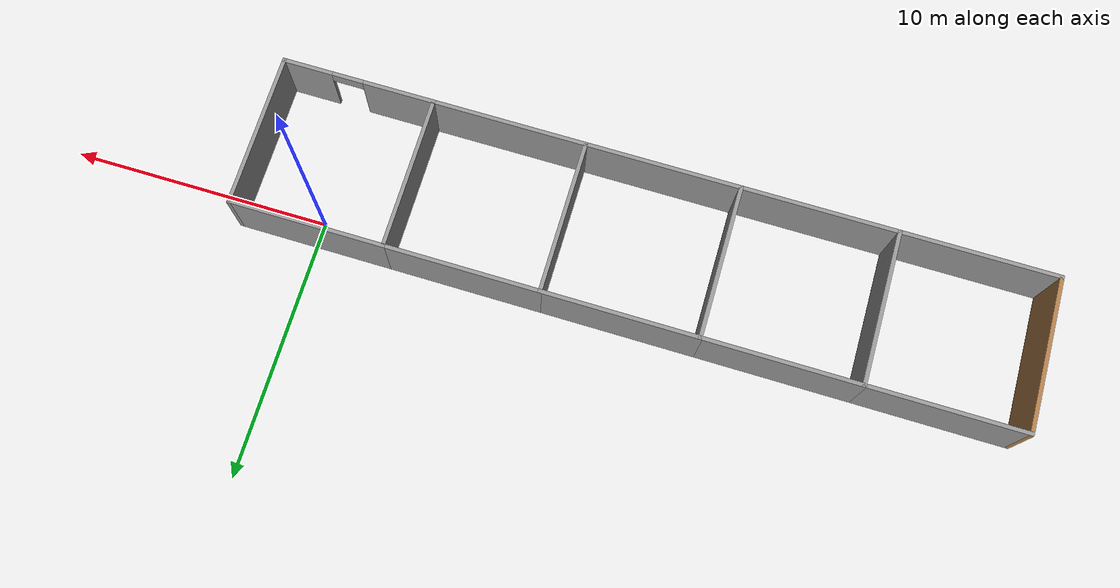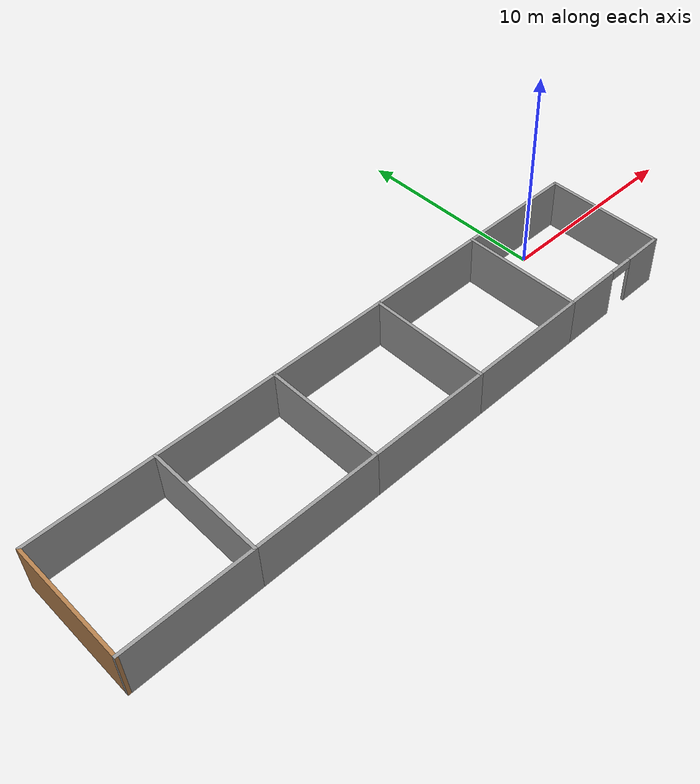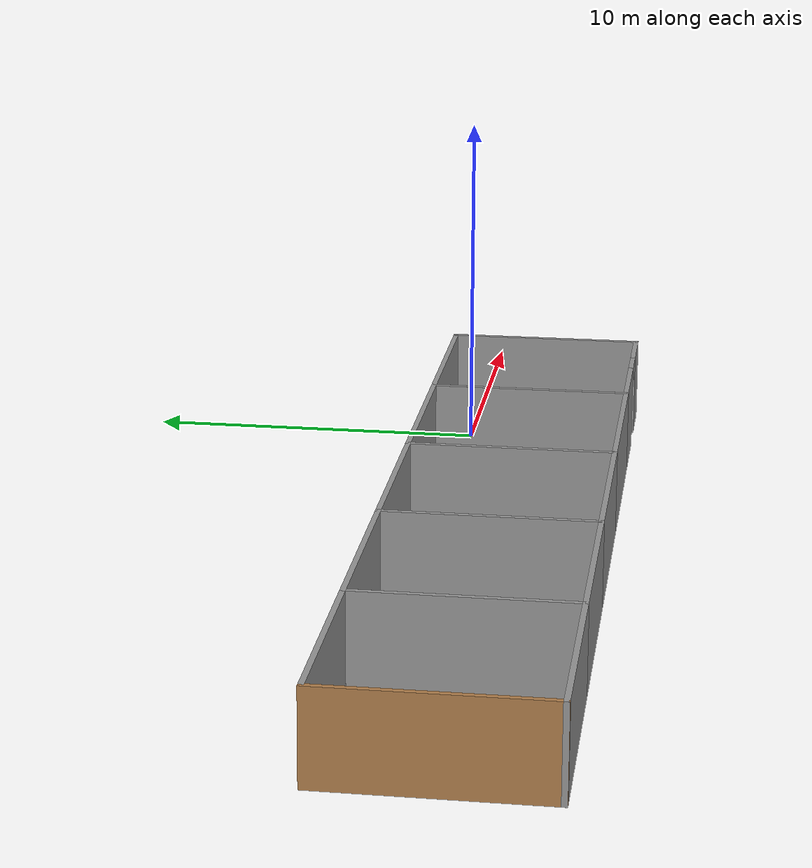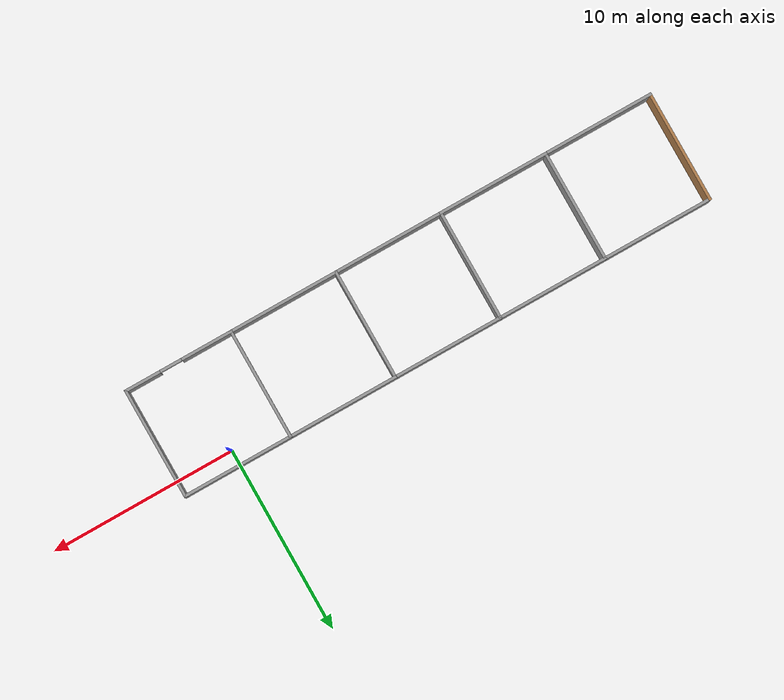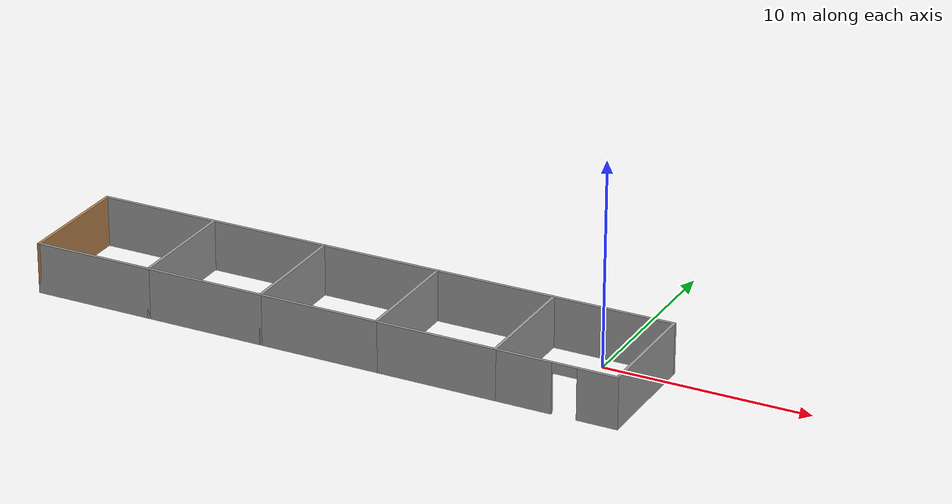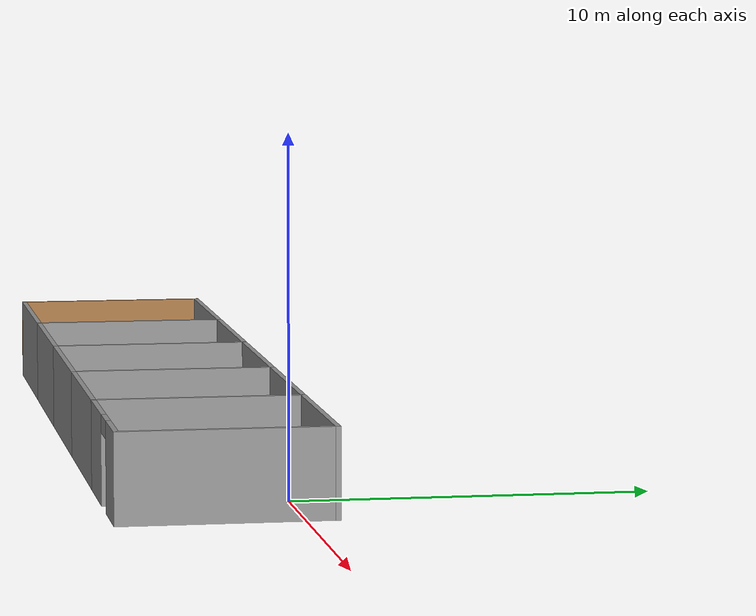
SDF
<?xml version='1.0'?>
<sdf version='1.6'>
  <model name='Layout_v_0_1'>
    <pose frame=''>-11.625 -2.075 0 0 -0 0</pose>
    <link name='Wall_0'>
      <pose frame=''>11.7 -2.925 0 0 -0 3.14159</pose>
      <visual name='Wall_0_Visual_0'>
        <pose frame=''>-2.0125 0 1.25 0 -0 0</pose>
        <geometry>
          <box>
            <size>1.975 0.15 2.5</size>
          </box>
        </geometry>
        <material>
          <script>
            <uri>file://media/materials/scripts/gazebo.material</uri>
            <name>Gazebo/Grey</name>
          </script>
          <ambient>1 1 1 1</ambient>
        </material>
        <meta>
          <layer>0</layer>
        </meta>
      </visual>
      <collision name='Wall_0_Collision_0'>
        <geometry>
          <box>
            <size>1.975 0.15 2.5</size>
          </box>
        </geometry>
        <pose frame=''>-2.0125 0 1.25 0 -0 0</pose>
      </collision>
      <visual name='Wall_0_Visual_1'>
        <pose frame=''>1.5875 0 1.25 0 -0 0</pose>
        <geometry>
          <box>
            <size>2.825 0.15 2.5</size>
          </box>
        </geometry>
        <material>
          <script>
            <uri>file://media/materials/scripts/gazebo.material</uri>
            <name>Gazebo/Grey</name>
          </script>
          <ambient>1 1 1 1</ambient>
        </material>
        <meta>
          <layer>0</layer>
        </meta>
      </visual>
      <collision name='Wall_0_Collision_1'>
        <geometry>
          <box>
            <size>2.825 0.15 2.5</size>
          </box>
        </geometry>
        <pose frame=''>1.5875 0 1.25 0 -0 0</pose>
      </collision>
      <visual name='Wall_0_Visual_2'>
        <pose frame=''>-0.425 0 2.25 0 -0 0</pose>
        <geometry>
          <box>
            <size>1.2 0.15 0.5</size>
          </box>
        </geometry>
        <material>
          <script>
            <uri>file://media/materials/scripts/gazebo.material</uri>
            <name>Gazebo/Grey</name>
          </script>
          <ambient>1 1 1 1</ambient>
        </material>
        <meta>
          <layer>0</layer>
        </meta>
      </visual>
      <collision name='Wall_0_Collision_2'>
        <geometry>
          <box>
            <size>1.2 0.15 0.5</size>
          </box>
        </geometry>
        <pose frame=''>-0.425 0 2.25 0 -0 0</pose>
      </collision>
    </link>
    <link name='Wall_10'>
      <collision name='Wall_10_Collision'>
        <geometry>
          <box>
            <size>6 0.15 2.5</size>
          </box>
        </geometry>
        <pose frame=''>0 0 1.25 0 -0 0</pose>
      </collision>
      <visual name='Wall_10_Visual'>
        <pose frame=''>0 0 1.25 0 -0 0</pose>
        <geometry>
          <box>
            <size>6 0.15 2.5</size>
          </box>
        </geometry>
        <material>
          <script>
            <uri>file://media/materials/scripts/gazebo.material</uri>
            <name>Gazebo/Grey</name>
          </script>
          <ambient>1 1 1 1</ambient>
        </material>
        <meta>
          <layer>0</layer>
        </meta>
      </visual>
      <pose frame=''>5.85 2.925 0 0 -0 0</pose>
    </link>
    <link name='Wall_12'>
      <collision name='Wall_12_Collision'>
        <geometry>
          <box>
            <size>6 0.15 2.5</size>
          </box>
        </geometry>
        <pose frame=''>0 0 1.25 0 -0 0</pose>
      </collision>
      <visual name='Wall_12_Visual'>
        <pose frame=''>0 0 1.25 0 -0 0</pose>
        <geometry>
          <box>
            <size>6 0.15 2.5</size>
          </box>
        </geometry>
        <material>
          <script>
            <uri>file://media/materials/scripts/gazebo.material</uri>
            <name>Gazebo/Grey</name>
          </script>
          <ambient>1 1 1 1</ambient>
        </material>
        <meta>
          <layer>0</layer>
        </meta>
      </visual>
      <pose frame=''>0 -2.925 0 0 -0 3.14159</pose>
    </link>
    <link name='Wall_13'>
      <collision name='Wall_13_Collision'>
        <geometry>
          <box>
            <size>6 0.15 2.5</size>
          </box>
        </geometry>
        <pose frame=''>0 0 1.25 0 -0 0</pose>
      </collision>
      <visual name='Wall_13_Visual'>
        <pose frame=''>0 0 1.25 0 -0 0</pose>
        <geometry>
          <box>
            <size>6 0.15 2.5</size>
          </box>
        </geometry>
        <material>
          <script>
            <uri>file://media/materials/scripts/gazebo.material</uri>
            <name>Gazebo/Grey</name>
          </script>
          <ambient>1 1 1 1</ambient>
        </material>
        <meta>
          <layer>0</layer>
        </meta>
      </visual>
      <pose frame=''>-2.925 0 0 0 -0 1.5708</pose>
    </link>
    <link name='Wall_14'>
      <collision name='Wall_14_Collision'>
        <geometry>
          <box>
            <size>6 0.15 2.5</size>
          </box>
        </geometry>
        <pose frame=''>0 0 1.25 0 -0 0</pose>
      </collision>
      <visual name='Wall_14_Visual'>
        <pose frame=''>0 0 1.25 0 -0 0</pose>
        <geometry>
          <box>
            <size>6 0.15 2.5</size>
          </box>
        </geometry>
        <material>
          <script>
            <uri>file://media/materials/scripts/gazebo.material</uri>
            <name>Gazebo/Grey</name>
          </script>
          <ambient>1 1 1 1</ambient>
        </material>
        <meta>
          <layer>0</layer>
        </meta>
      </visual>
      <pose frame=''>-5.85 2.925 0 0 -0 3.14159</pose>
    </link>
    <link name='Wall_15'>
      <collision name='Wall_15_Collision'>
        <geometry>
          <box>
            <size>6 0.15 2.5</size>
          </box>
        </geometry>
        <pose frame=''>0 0 1.25 0 -0 0</pose>
      </collision>
      <visual name='Wall_15_Visual'>
        <pose frame=''>0 0 1.25 0 -0 0</pose>
        <geometry>
          <box>
            <size>6 0.15 2.5</size>
          </box>
        </geometry>
        <material>
          <script>
            <uri>file://media/materials/scripts/gazebo.material</uri>
            <name>Gazebo/Grey</name>
          </script>
          <ambient>1 1 1 1</ambient>
        </material>
        <meta>
          <layer>0</layer>
        </meta>
      </visual>
      <pose frame=''>-8.775 0 0 0 -0 -1.5708</pose>
    </link>
    <link name='Wall_16'>
      <collision name='Wall_16_Collision'>
        <geometry>
          <box>
            <size>6 0.15 2.5</size>
          </box>
        </geometry>
        <pose frame=''>0 0 1.25 0 -0 0</pose>
      </collision>
      <visual name='Wall_16_Visual'>
        <pose frame=''>0 0 1.25 0 -0 0</pose>
        <geometry>
          <box>
            <size>6 0.15 2.5</size>
          </box>
        </geometry>
        <material>
          <script>
            <uri>file://media/materials/scripts/gazebo.material</uri>
            <name>Gazebo/Grey</name>
          </script>
          <ambient>1 1 1 1</ambient>
        </material>
        <meta>
          <layer>0</layer>
        </meta>
      </visual>
      <pose frame=''>-11.7 -2.925 0 0 -0 3.14159</pose>
    </link>
    <link name='Wall_17'>
      <collision name='Wall_17_Collision'>
        <geometry>
          <box>
            <size>6 0.15 2.5</size>
          </box>
        </geometry>
        <pose frame=''>0 0 1.25 0 -0 0</pose>
      </collision>
      <visual name='Wall_17_Visual'>
        <pose frame=''>0 0 1.25 0 -0 0</pose>
        <geometry>
          <box>
            <size>6 0.15 2.5</size>
          </box>
        </geometry>
        <material>
          <script>
            <uri>file://media/materials/scripts/gazebo.material</uri>
            <name>Gazebo/Wood</name>
          </script>
          <ambient>1 1 1 1</ambient>
        </material>
        <meta>
          <layer>0</layer>
        </meta>
      </visual>
      <pose frame=''>-14.625 0 0 0 -0 1.5708</pose>
    </link>
    <link name='Wall_18'>
      <collision name='Wall_18_Collision'>
        <geometry>
          <box>
            <size>6 0.15 2.5</size>
          </box>
        </geometry>
        <pose frame=''>0 0 1.25 0 -0 0</pose>
      </collision>
      <visual name='Wall_18_Visual'>
        <pose frame=''>0 0 1.25 0 -0 0</pose>
        <geometry>
          <box>
            <size>6 0.15 2.5</size>
          </box>
        </geometry>
        <material>
          <script>
            <uri>file://media/materials/scripts/gazebo.material</uri>
            <name>Gazebo/Grey</name>
          </script>
          <ambient>1 1 1 1</ambient>
        </material>
        <meta>
          <layer>0</layer>
        </meta>
      </visual>
      <pose frame=''>-11.7 2.925 0 0 -0 0</pose>
    </link>
    <link name='Wall_20'>
      <collision name='Wall_20_Collision'>
        <geometry>
          <box>
            <size>6 0.15 2.5</size>
          </box>
        </geometry>
        <pose frame=''>0 0 1.25 0 -0 0</pose>
      </collision>
      <visual name='Wall_20_Visual'>
        <pose frame=''>0 0 1.25 0 -0 0</pose>
        <geometry>
          <box>
            <size>6 0.15 2.5</size>
          </box>
        </geometry>
        <material>
          <script>
            <uri>file://media/materials/scripts/gazebo.material</uri>
            <name>Gazebo/Grey</name>
          </script>
          <ambient>1 1 1 1</ambient>
        </material>
        <meta>
          <layer>0</layer>
        </meta>
      </visual>
      <pose frame=''>0 2.925 0 0 -0 3.14159</pose>
    </link>
    <link name='Wall_22'>
      <collision name='Wall_22_Collision'>
        <geometry>
          <box>
            <size>6 0.15 2.5</size>
          </box>
        </geometry>
        <pose frame=''>0 0 1.25 0 -0 0</pose>
      </collision>
      <visual name='Wall_22_Visual'>
        <pose frame=''>0 0 1.25 0 -0 0</pose>
        <geometry>
          <box>
            <size>6 0.15 2.5</size>
          </box>
        </geometry>
        <material>
          <script>
            <uri>file://media/materials/scripts/gazebo.material</uri>
            <name>Gazebo/Grey</name>
          </script>
          <ambient>1 1 1 1</ambient>
        </material>
        <meta>
          <layer>0</layer>
        </meta>
      </visual>
      <pose frame=''>-5.85 -2.925 0 0 -0 3.14159</pose>
    </link>
    <link name='Wall_5'>
      <collision name='Wall_5_Collision'>
        <geometry>
          <box>
            <size>6 0.15 2.5</size>
          </box>
        </geometry>
        <pose frame=''>0 0 1.25 0 -0 0</pose>
      </collision>
      <visual name='Wall_5_Visual'>
        <pose frame=''>0 0 1.25 0 -0 0</pose>
        <geometry>
          <box>
            <size>6 0.15 2.5</size>
          </box>
        </geometry>
        <material>
          <script>
            <uri>file://media/materials/scripts/gazebo.material</uri>
            <name>Gazebo/Grey</name>
          </script>
          <ambient>1 1 1 1</ambient>
        </material>
        <meta>
          <layer>0</layer>
        </meta>
      </visual>
      <pose frame=''>14.625 0 0 0 -0 1.5708</pose>
    </link>
    <link name='Wall_6'>
      <collision name='Wall_6_Collision'>
        <geometry>
          <box>
            <size>6 0.15 2.5</size>
          </box>
        </geometry>
        <pose frame=''>0 0 1.25 0 -0 0</pose>
      </collision>
      <visual name='Wall_6_Visual'>
        <pose frame=''>0 0 1.25 0 -0 0</pose>
        <geometry>
          <box>
            <size>6 0.15 2.5</size>
          </box>
        </geometry>
        <material>
          <script>
            <uri>file://media/materials/scripts/gazebo.material</uri>
            <name>Gazebo/Grey</name>
          </script>
          <ambient>1 1 1 1</ambient>
        </material>
        <meta>
          <layer>0</layer>
        </meta>
      </visual>
      <pose frame=''>11.7 2.925 0 0 -0 3.14159</pose>
    </link>
    <link name='Wall_7'>
      <collision name='Wall_7_Collision'>
        <geometry>
          <box>
            <size>6 0.15 2.5</size>
          </box>
        </geometry>
        <pose frame=''>0 0 1.25 0 -0 0</pose>
      </collision>
      <visual name='Wall_7_Visual'>
        <pose frame=''>0 0 1.25 0 -0 0</pose>
        <geometry>
          <box>
            <size>6 0.15 2.5</size>
          </box>
        </geometry>
        <material>
          <script>
            <uri>file://media/materials/scripts/gazebo.material</uri>
            <name>Gazebo/Grey</name>
          </script>
          <ambient>1 1 1 1</ambient>
        </material>
        <meta>
          <layer>0</layer>
        </meta>
      </visual>
      <pose frame=''>8.775 0 0 0 -0 -1.5708</pose>
    </link>
    <link name='Wall_8'>
      <collision name='Wall_8_Collision'>
        <geometry>
          <box>
            <size>6 0.15 2.5</size>
          </box>
        </geometry>
        <pose frame=''>0 0 1.25 0 -0 0</pose>
      </collision>
      <visual name='Wall_8_Visual'>
        <pose frame=''>0 0 1.25 0 -0 0</pose>
        <geometry>
          <box>
            <size>6 0.15 2.5</size>
          </box>
        </geometry>
        <material>
          <script>
            <uri>file://media/materials/scripts/gazebo.material</uri>
            <name>Gazebo/Grey</name>
          </script>
          <ambient>1 1 1 1</ambient>
        </material>
        <meta>
          <layer>0</layer>
        </meta>
      </visual>
      <pose frame=''>5.85 -2.925 0 0 -0 3.14159</pose>
    </link>
    <link name='Wall_9'>
      <collision name='Wall_9_Collision'>
        <geometry>
          <box>
            <size>6 0.15 2.5</size>
          </box>
        </geometry>
        <pose frame=''>0 0 1.25 0 -0 0</pose>
      </collision>
      <visual name='Wall_9_Visual'>
        <pose frame=''>0 0 1.25 0 -0 0</pose>
        <geometry>
          <box>
            <size>6 0.15 2.5</size>
          </box>
        </geometry>
        <material>
          <script>
            <uri>file://media/materials/scripts/gazebo.material</uri>
            <name>Gazebo/Grey</name>
          </script>
          <ambient>1 1 1 1</ambient>
        </material>
        <meta>
          <layer>0</layer>
        </meta>
      </visual>
      <pose frame=''>2.925 0 0 0 -0 1.5708</pose>
    </link>
    <static>1</static>
  </model>
</sdf>
